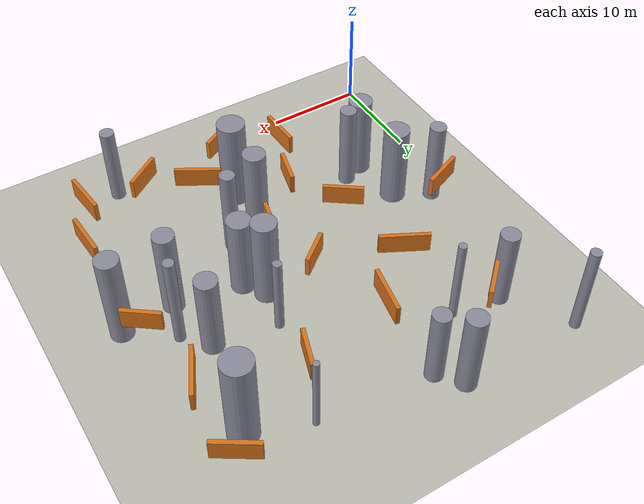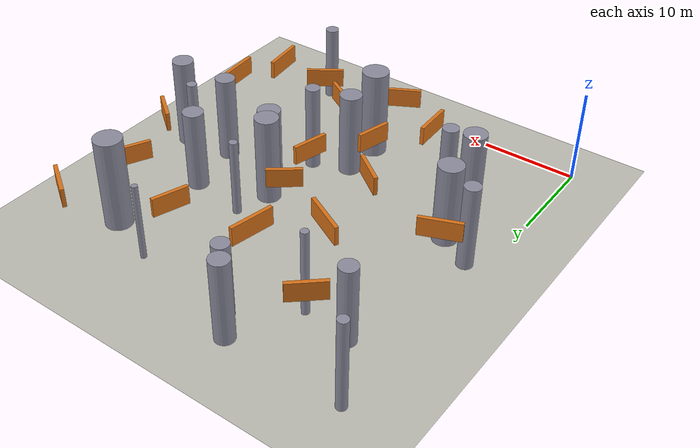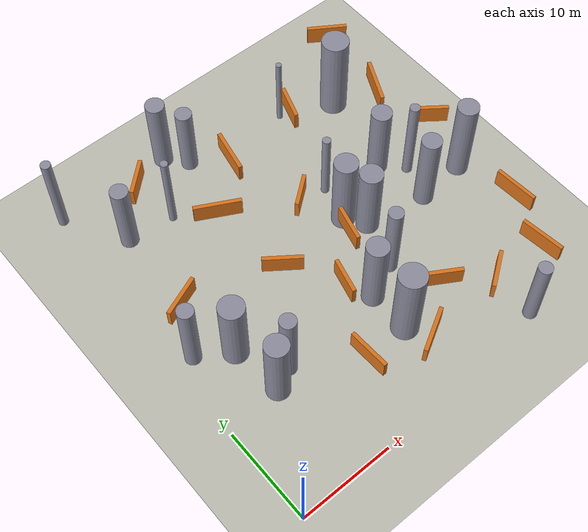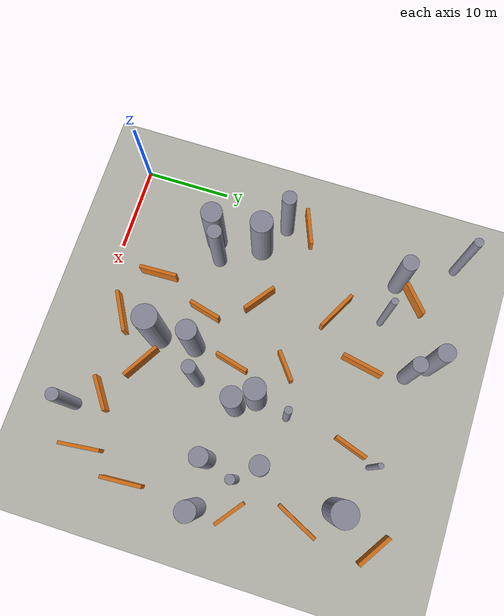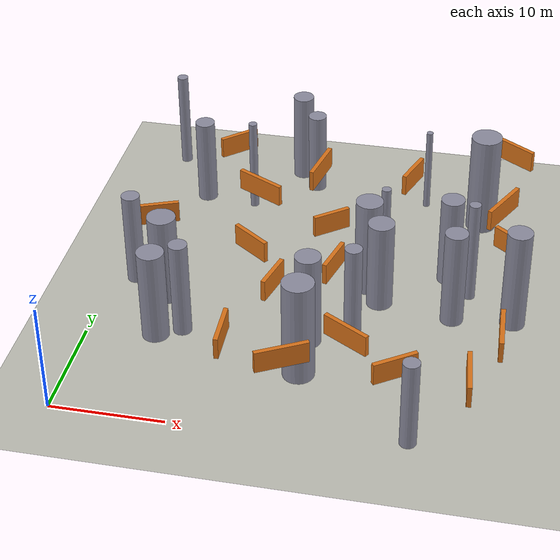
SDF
<?xml version="1.0"?>
<sdf version="1.9">
  <world name="benchmark">
    <physics type="ode">
      <max_step_size>0.004</max_step_size>
      <real_time_factor>1.0</real_time_factor>
      <real_time_update_rate>250</real_time_update_rate>
    </physics>
    <gravity>0 0 -9.8</gravity>
    <magnetic_field>6e-06 2.3e-05 -4.2e-05</magnetic_field>
    <atmosphere type="adiabatic" />
    <scene>
      <grid>false</grid>
      <ambient>0.58 0.58 0.56 1</ambient>
      <background>0.78 0.80 0.82 1</background>
      <shadows>true</shadows>
    </scene>
    <spherical_coordinates>
      <surface_model>EARTH_WGS84</surface_model>
      <world_frame_orientation>ENU</world_frame_orientation>
      <latitude_deg>30.334034</latitude_deg>
      <longitude_deg>120.036295</longitude_deg>
      <elevation>0</elevation>
    </spherical_coordinates>
    <model name="ground_plane">
      <static>true</static>
      <link name="link">
        <collision name="collision">
          <geometry><plane><normal>0 0 1</normal><size>60.0 60.0</size></plane></geometry>
          <surface><friction><ode><mu>100</mu><mu2>50</mu2></ode></friction><contact><ode /></contact><bounce /></surface>
        </collision>
        <visual name="visual">
          <geometry><plane><normal>0 0 1</normal><size>60.0 60.0</size></plane></geometry>
          <material><ambient>0.74 0.74 0.70 1</ambient><diffuse>0.74 0.74 0.70 1</diffuse><specular>0.05 0.05 0.05 1</specular></material>
        </visual>
      </link>
    </model>
    <light name="sunUTC" type="directional">
      <pose>0 0 500 0 0 0</pose>
      <cast_shadows>true</cast_shadows>
      <intensity>1.15</intensity>
      <direction>-0.25 0.45 -0.86</direction>
      <diffuse>0.98 0.94 0.86 1</diffuse>
      <specular>0.28 0.28 0.25 1</specular>
    </light>
    <model name="obstacle_0">
      <static>true</static>
      <pose>6.075 10.817 4.421 0 0 0.000</pose>
      <link name="link">
        <collision name="collision"><geometry><cylinder><radius>1.210</radius><length>8.841</length></cylinder></geometry></collision>
        <visual name="visual"><geometry><cylinder><radius>1.210</radius><length>8.841</length></cylinder></geometry>
          <material><ambient>0.55 0.55 0.62 1</ambient><diffuse>0.55 0.55 0.62 1</diffuse></material>
        </visual>
      </link>
    </model>
    <model name="obstacle_1">
      <static>true</static>
      <pose>19.401 8.061 4.830 0 0 0.000</pose>
      <link name="link">
        <collision name="collision"><geometry><cylinder><radius>1.402</radius><length>9.660</length></cylinder></geometry></collision>
        <visual name="visual"><geometry><cylinder><radius>1.402</radius><length>9.660</length></cylinder></geometry>
          <material><ambient>0.55 0.55 0.62 1</ambient><diffuse>0.55 0.55 0.62 1</diffuse></material>
        </visual>
      </link>
    </model>
    <model name="obstacle_2">
      <static>true</static>
      <pose>13.183 6.612 0 0 0 1.607</pose>
      <link name="link">
        <collision name="slab"><pose>0 0 4.564 0 0 0</pose><geometry><box><size>4.257 0.400 2.000</size></box></geometry></collision>
        <visual name="slab_vis"><pose>0 0 4.564 0 0 0</pose><geometry><box><size>4.257 0.400 2.000</size></box></geometry><material><ambient>0.85 0.45 0.10 1</ambient><diffuse>0.85 0.45 0.10 1</diffuse></material></visual>
      </link>
    </model>
    <model name="obstacle_3">
      <static>true</static>
      <pose>12.993 18.434 0 0 0 2.506</pose>
      <link name="link">
        <collision name="slab"><pose>0 0 5.460 0 0 0</pose><geometry><box><size>3.965 0.400 2.000</size></box></geometry></collision>
        <visual name="slab_vis"><pose>0 0 5.460 0 0 0</pose><geometry><box><size>3.965 0.400 2.000</size></box></geometry><material><ambient>0.85 0.45 0.10 1</ambient><diffuse>0.85 0.45 0.10 1</diffuse></material></visual>
      </link>
    </model>
    <model name="obstacle_4">
      <static>true</static>
      <pose>2.025 18.437 4.521 0 0 0.000</pose>
      <link name="link">
        <collision name="collision"><geometry><cylinder><radius>0.831</radius><length>9.043</length></cylinder></geometry></collision>
        <visual name="visual"><geometry><cylinder><radius>0.831</radius><length>9.043</length></cylinder></geometry>
          <material><ambient>0.55 0.55 0.62 1</ambient><diffuse>0.55 0.55 0.62 1</diffuse></material>
        </visual>
      </link>
    </model>
    <model name="obstacle_5">
      <static>true</static>
      <pose>16.095 13.191 0 0 0 1.321</pose>
      <link name="link">
        <collision name="slab"><pose>0 0 5.680 0 0 0</pose><geometry><box><size>3.640 0.400 2.000</size></box></geometry></collision>
        <visual name="slab_vis"><pose>0 0 5.680 0 0 0</pose><geometry><box><size>3.640 0.400 2.000</size></box></geometry><material><ambient>0.85 0.45 0.10 1</ambient><diffuse>0.85 0.45 0.10 1</diffuse></material></visual>
      </link>
    </model>
    <model name="obstacle_6">
      <static>true</static>
      <pose>5.441 16.321 4.333 0 0 0.000</pose>
      <link name="link">
        <collision name="collision"><geometry><cylinder><radius>1.294</radius><length>8.666</length></cylinder></geometry></collision>
        <visual name="visual"><geometry><cylinder><radius>1.294</radius><length>8.666</length></cylinder></geometry>
          <material><ambient>0.55 0.55 0.62 1</ambient><diffuse>0.55 0.55 0.62 1</diffuse></material>
        </visual>
      </link>
    </model>
    <model name="obstacle_7">
      <static>true</static>
      <pose>18.815 4.285 0 0 0 -2.636</pose>
      <link name="link">
        <collision name="slab"><pose>0 0 4.896 0 0 0</pose><geometry><box><size>4.705 0.400 2.000</size></box></geometry></collision>
        <visual name="slab_vis"><pose>0 0 4.896 0 0 0</pose><geometry><box><size>4.705 0.400 2.000</size></box></geometry><material><ambient>0.85 0.45 0.10 1</ambient><diffuse>0.85 0.45 0.10 1</diffuse></material></visual>
      </link>
    </model>
    <model name="obstacle_8">
      <static>true</static>
      <pose>19.318 12.519 4.547 0 0 0.000</pose>
      <link name="link">
        <collision name="collision"><geometry><cylinder><radius>1.148</radius><length>9.095</length></cylinder></geometry></collision>
        <visual name="visual"><geometry><cylinder><radius>1.148</radius><length>9.095</length></cylinder></geometry>
          <material><ambient>0.55 0.55 0.62 1</ambient><diffuse>0.55 0.55 0.62 1</diffuse></material>
        </visual>
      </link>
    </model>
    <model name="obstacle_9">
      <static>true</static>
      <pose>8.211 11.867 4.596 0 0 0.000</pose>
      <link name="link">
        <collision name="collision"><geometry><cylinder><radius>0.834</radius><length>9.193</length></cylinder></geometry></collision>
        <visual name="visual"><geometry><cylinder><radius>0.834</radius><length>9.193</length></cylinder></geometry>
          <material><ambient>0.55 0.55 0.62 1</ambient><diffuse>0.55 0.55 0.62 1</diffuse></material>
        </visual>
      </link>
    </model>
    <model name="obstacle_10">
      <static>true</static>
      <pose>1.163 39.115 4.821 0 0 0.000</pose>
      <link name="link">
        <collision name="collision"><geometry><cylinder><radius>0.521</radius><length>9.643</length></cylinder></geometry></collision>
        <visual name="visual"><geometry><cylinder><radius>0.521</radius><length>9.643</length></cylinder></geometry>
          <material><ambient>0.55 0.55 0.62 1</ambient><diffuse>0.55 0.55 0.62 1</diffuse></material>
        </visual>
      </link>
    </model>
    <model name="obstacle_11">
      <static>true</static>
      <pose>15.363 36.771 4.090 0 0 0.000</pose>
      <link name="link">
        <collision name="collision"><geometry><cylinder><radius>0.872</radius><length>8.180</length></cylinder></geometry></collision>
        <visual name="visual"><geometry><cylinder><radius>0.872</radius><length>8.180</length></cylinder></geometry>
          <material><ambient>0.55 0.55 0.62 1</ambient><diffuse>0.55 0.55 0.62 1</diffuse></material>
        </visual>
      </link>
    </model>
    <model name="obstacle_12">
      <static>true</static>
      <pose>11.910 26.891 0 0 0 2.658</pose>
      <link name="link">
        <collision name="slab"><pose>0 0 5.796 0 0 0</pose><geometry><box><size>4.764 0.400 2.000</size></box></geometry></collision>
        <visual name="slab_vis"><pose>0 0 5.796 0 0 0</pose><geometry><box><size>4.764 0.400 2.000</size></box></geometry><material><ambient>0.85 0.45 0.10 1</ambient><diffuse>0.85 0.45 0.10 1</diffuse></material></visual>
      </link>
    </model>
    <model name="obstacle_13">
      <static>true</static>
      <pose>5.031 32.960 4.236 0 0 0.000</pose>
      <link name="link">
        <collision name="collision"><geometry><cylinder><radius>0.926</radius><length>8.471</length></cylinder></geometry></collision>
        <visual name="visual"><geometry><cylinder><radius>0.926</radius><length>8.471</length></cylinder></geometry>
          <material><ambient>0.55 0.55 0.62 1</ambient><diffuse>0.55 0.55 0.62 1</diffuse></material>
        </visual>
      </link>
    </model>
    <model name="obstacle_14">
      <static>true</static>
      <pose>13.543 38.933 4.451 0 0 0.000</pose>
      <link name="link">
        <collision name="collision"><geometry><cylinder><radius>0.996</radius><length>8.901</length></cylinder></geometry></collision>
        <visual name="visual"><geometry><cylinder><radius>0.996</radius><length>8.901</length></cylinder></geometry>
          <material><ambient>0.55 0.55 0.62 1</ambient><diffuse>0.55 0.55 0.62 1</diffuse></material>
        </visual>
      </link>
    </model>
    <model name="obstacle_15">
      <static>true</static>
      <pose>9.934 32.352 4.613 0 0 0.000</pose>
      <link name="link">
        <collision name="collision"><geometry><cylinder><radius>0.399</radius><length>9.226</length></cylinder></geometry></collision>
        <visual name="visual"><geometry><cylinder><radius>0.399</radius><length>9.226</length></cylinder></geometry>
          <material><ambient>0.55 0.55 0.62 1</ambient><diffuse>0.55 0.55 0.62 1</diffuse></material>
        </visual>
      </link>
    </model>
    <model name="obstacle_16">
      <static>true</static>
      <pose>7.947 34.733 0 0 0 -2.406</pose>
      <link name="link">
        <collision name="slab"><pose>0 0 5.463 0 0 0</pose><geometry><box><size>3.865 0.400 2.000</size></box></geometry></collision>
        <visual name="slab_vis"><pose>0 0 5.463 0 0 0</pose><geometry><box><size>3.865 0.400 2.000</size></box></geometry><material><ambient>0.85 0.45 0.10 1</ambient><diffuse>0.85 0.45 0.10 1</diffuse></material></visual>
      </link>
    </model>
    <model name="obstacle_17">
      <static>true</static>
      <pose>16.771 31.196 0 0 0 -1.767</pose>
      <link name="link">
        <collision name="slab"><pose>0 0 5.711 0 0 0</pose><geometry><box><size>4.675 0.400 2.000</size></box></geometry></collision>
        <visual name="slab_vis"><pose>0 0 5.711 0 0 0</pose><geometry><box><size>4.675 0.400 2.000</size></box></geometry><material><ambient>0.85 0.45 0.10 1</ambient><diffuse>0.85 0.45 0.10 1</diffuse></material></visual>
      </link>
    </model>
    <model name="obstacle_18">
      <static>true</static>
      <pose>19.290 23.370 0 0 0 0.668</pose>
      <link name="link">
        <collision name="slab"><pose>0 0 5.270 0 0 0</pose><geometry><box><size>3.540 0.400 2.000</size></box></geometry></collision>
        <visual name="slab_vis"><pose>0 0 5.270 0 0 0</pose><geometry><box><size>3.540 0.400 2.000</size></box></geometry><material><ambient>0.85 0.45 0.10 1</ambient><diffuse>0.85 0.45 0.10 1</diffuse></material></visual>
      </link>
    </model>
    <model name="obstacle_19">
      <static>true</static>
      <pose>3.371 21.287 0 0 0 -2.758</pose>
      <link name="link">
        <collision name="slab"><pose>0 0 5.454 0 0 0</pose><geometry><box><size>4.219 0.400 2.000</size></box></geometry></collision>
        <visual name="slab_vis"><pose>0 0 5.454 0 0 0</pose><geometry><box><size>4.219 0.400 2.000</size></box></geometry><material><ambient>0.85 0.45 0.10 1</ambient><diffuse>0.85 0.45 0.10 1</diffuse></material></visual>
      </link>
    </model>
    <model name="obstacle_20">
      <static>true</static>
      <pose>29.710 1.480 4.180 0 0 0.000</pose>
      <link name="link">
        <collision name="collision"><geometry><cylinder><radius>0.720</radius><length>8.361</length></cylinder></geometry></collision>
        <visual name="visual"><geometry><cylinder><radius>0.720</radius><length>8.361</length></cylinder></geometry>
          <material><ambient>0.55 0.55 0.62 1</ambient><diffuse>0.55 0.55 0.62 1</diffuse></material>
        </visual>
      </link>
    </model>
    <model name="obstacle_21">
      <static>true</static>
      <pose>36.023 10.614 0 0 0 -1.507</pose>
      <link name="link">
        <collision name="slab"><pose>0 0 4.783 0 0 0</pose><geometry><box><size>4.549 0.400 2.000</size></box></geometry></collision>
        <visual name="slab_vis"><pose>0 0 4.783 0 0 0</pose><geometry><box><size>4.549 0.400 2.000</size></box></geometry><material><ambient>0.85 0.45 0.10 1</ambient><diffuse>0.85 0.45 0.10 1</diffuse></material></visual>
      </link>
    </model>
    <model name="obstacle_22">
      <static>true</static>
      <pose>33.973 5.085 0 0 0 1.680</pose>
      <link name="link">
        <collision name="slab"><pose>0 0 4.407 0 0 0</pose><geometry><box><size>4.547 0.400 2.000</size></box></geometry></collision>
        <visual name="slab_vis"><pose>0 0 4.407 0 0 0</pose><geometry><box><size>4.547 0.400 2.000</size></box></geometry><material><ambient>0.85 0.45 0.10 1</ambient><diffuse>0.85 0.45 0.10 1</diffuse></material></visual>
      </link>
    </model>
    <model name="obstacle_23">
      <static>true</static>
      <pose>27.954 5.161 0 0 0 0.608</pose>
      <link name="link">
        <collision name="slab"><pose>0 0 4.501 0 0 0</pose><geometry><box><size>4.013 0.400 2.000</size></box></geometry></collision>
        <visual name="slab_vis"><pose>0 0 4.501 0 0 0</pose><geometry><box><size>4.013 0.400 2.000</size></box></geometry><material><ambient>0.85 0.45 0.10 1</ambient><diffuse>0.85 0.45 0.10 1</diffuse></material></visual>
      </link>
    </model>
    <model name="obstacle_24">
      <static>true</static>
      <pose>36.518 18.442 4.900 0 0 0.000</pose>
      <link name="link">
        <collision name="collision"><geometry><cylinder><radius>1.118</radius><length>9.800</length></cylinder></geometry></collision>
        <visual name="visual"><geometry><cylinder><radius>1.118</radius><length>9.800</length></cylinder></geometry>
          <material><ambient>0.55 0.55 0.62 1</ambient><diffuse>0.55 0.55 0.62 1</diffuse></material>
        </visual>
      </link>
    </model>
    <model name="obstacle_25">
      <static>true</static>
      <pose>22.951 14.053 4.658 0 0 0.000</pose>
      <link name="link">
        <collision name="collision"><geometry><cylinder><radius>0.766</radius><length>9.315</length></cylinder></geometry></collision>
        <visual name="visual"><geometry><cylinder><radius>0.766</radius><length>9.315</length></cylinder></geometry>
          <material><ambient>0.55 0.55 0.62 1</ambient><diffuse>0.55 0.55 0.62 1</diffuse></material>
        </visual>
      </link>
    </model>
    <model name="obstacle_26">
      <static>true</static>
      <pose>24.517 19.118 4.336 0 0 0.000</pose>
      <link name="link">
        <collision name="collision"><geometry><cylinder><radius>1.190</radius><length>8.672</length></cylinder></geometry></collision>
        <visual name="visual"><geometry><cylinder><radius>1.190</radius><length>8.672</length></cylinder></geometry>
          <material><ambient>0.55 0.55 0.62 1</ambient><diffuse>0.55 0.55 0.62 1</diffuse></material>
        </visual>
      </link>
    </model>
    <model name="obstacle_27">
      <static>true</static>
      <pose>31.196 17.950 4.673 0 0 0.000</pose>
      <link name="link">
        <collision name="collision"><geometry><cylinder><radius>1.032</radius><length>9.347</length></cylinder></geometry></collision>
        <visual name="visual"><geometry><cylinder><radius>1.032</radius><length>9.347</length></cylinder></geometry>
          <material><ambient>0.55 0.55 0.62 1</ambient><diffuse>0.55 0.55 0.62 1</diffuse></material>
        </visual>
      </link>
    </model>
    <model name="obstacle_28">
      <static>true</static>
      <pose>23.405 8.216 0 0 0 -0.538</pose>
      <link name="link">
        <collision name="slab"><pose>0 0 4.776 0 0 0</pose><geometry><box><size>4.573 0.400 2.000</size></box></geometry></collision>
        <visual name="slab_vis"><pose>0 0 4.776 0 0 0</pose><geometry><box><size>4.573 0.400 2.000</size></box></geometry><material><ambient>0.85 0.45 0.10 1</ambient><diffuse>0.85 0.45 0.10 1</diffuse></material></visual>
      </link>
    </model>
    <model name="obstacle_29">
      <static>true</static>
      <pose>20.570 17.681 0 0 0 1.322</pose>
      <link name="link">
        <collision name="slab"><pose>0 0 4.896 0 0 0</pose><geometry><box><size>3.835 0.400 2.000</size></box></geometry></collision>
        <visual name="slab_vis"><pose>0 0 4.896 0 0 0</pose><geometry><box><size>3.835 0.400 2.000</size></box></geometry><material><ambient>0.85 0.45 0.10 1</ambient><diffuse>0.85 0.45 0.10 1</diffuse></material></visual>
      </link>
    </model>
    <model name="obstacle_30">
      <static>true</static>
      <pose>23.110 21.199 4.709 0 0 0.000</pose>
      <link name="link">
        <collision name="collision"><geometry><cylinder><radius>1.227</radius><length>9.418</length></cylinder></geometry></collision>
        <visual name="visual"><geometry><cylinder><radius>1.227</radius><length>9.418</length></cylinder></geometry>
          <material><ambient>0.55 0.55 0.62 1</ambient><diffuse>0.55 0.55 0.62 1</diffuse></material>
        </visual>
      </link>
    </model>
    <model name="obstacle_31">
      <static>true</static>
      <pose>34.731 37.443 0 0 0 2.564</pose>
      <link name="link">
        <collision name="slab"><pose>0 0 5.770 0 0 0</pose><geometry><box><size>4.170 0.400 2.000</size></box></geometry></collision>
        <visual name="slab_vis"><pose>0 0 5.770 0 0 0</pose><geometry><box><size>4.170 0.400 2.000</size></box></geometry><material><ambient>0.85 0.45 0.10 1</ambient><diffuse>0.85 0.45 0.10 1</diffuse></material></visual>
      </link>
    </model>
    <model name="obstacle_32">
      <static>true</static>
      <pose>32.329 21.625 4.999 0 0 0.000</pose>
      <link name="link">
        <collision name="collision"><geometry><cylinder><radius>0.526</radius><length>9.999</length></cylinder></geometry></collision>
        <visual name="visual"><geometry><cylinder><radius>0.526</radius><length>9.999</length></cylinder></geometry>
          <material><ambient>0.55 0.55 0.62 1</ambient><diffuse>0.55 0.55 0.62 1</diffuse></material>
        </visual>
      </link>
    </model>
    <model name="obstacle_33">
      <static>true</static>
      <pose>34.399 29.247 0 0 0 1.122</pose>
      <link name="link">
        <collision name="slab"><pose>0 0 4.804 0 0 0</pose><geometry><box><size>4.980 0.400 2.000</size></box></geometry></collision>
        <visual name="slab_vis"><pose>0 0 4.804 0 0 0</pose><geometry><box><size>4.980 0.400 2.000</size></box></geometry><material><ambient>0.85 0.45 0.10 1</ambient><diffuse>0.85 0.45 0.10 1</diffuse></material></visual>
      </link>
    </model>
    <model name="obstacle_34">
      <static>true</static>
      <pose>25.473 32.460 0 0 0 -1.894</pose>
      <link name="link">
        <collision name="slab"><pose>0 0 5.217 0 0 0</pose><geometry><box><size>3.786 0.400 2.000</size></box></geometry></collision>
        <visual name="slab_vis"><pose>0 0 5.217 0 0 0</pose><geometry><box><size>3.786 0.400 2.000</size></box></geometry><material><ambient>0.85 0.45 0.10 1</ambient><diffuse>0.85 0.45 0.10 1</diffuse></material></visual>
      </link>
    </model>
    <model name="obstacle_35">
      <static>true</static>
      <pose>35.646 22.423 0 0 0 -0.649</pose>
      <link name="link">
        <collision name="slab"><pose>0 0 5.708 0 0 0</pose><geometry><box><size>3.650 0.400 2.000</size></box></geometry></collision>
        <visual name="slab_vis"><pose>0 0 5.708 0 0 0</pose><geometry><box><size>3.650 0.400 2.000</size></box></geometry><material><ambient>0.85 0.45 0.10 1</ambient><diffuse>0.85 0.45 0.10 1</diffuse></material></visual>
      </link>
    </model>
    <model name="obstacle_36">
      <static>true</static>
      <pose>24.025 25.080 4.154 0 0 0.000</pose>
      <link name="link">
        <collision name="collision"><geometry><cylinder><radius>0.438</radius><length>8.309</length></cylinder></geometry></collision>
        <visual name="visual"><geometry><cylinder><radius>0.438</radius><length>8.309</length></cylinder></geometry>
          <material><ambient>0.55 0.55 0.62 1</ambient><diffuse>0.55 0.55 0.62 1</diffuse></material>
        </visual>
      </link>
    </model>
    <model name="obstacle_37">
      <static>true</static>
      <pose>32.166 33.224 4.938 0 0 0.000</pose>
      <link name="link">
        <collision name="collision"><geometry><cylinder><radius>1.436</radius><length>9.877</length></cylinder></geometry></collision>
        <visual name="visual"><geometry><cylinder><radius>1.436</radius><length>9.877</length></cylinder></geometry>
          <material><ambient>0.55 0.55 0.62 1</ambient><diffuse>0.55 0.55 0.62 1</diffuse></material>
        </visual>
      </link>
    </model>
    <model name="obstacle_38">
      <static>true</static>
      <pose>30.184 23.935 4.372 0 0 0.000</pose>
      <link name="link">
        <collision name="collision"><geometry><cylinder><radius>1.068</radius><length>8.745</length></cylinder></geometry></collision>
        <visual name="visual"><geometry><cylinder><radius>1.068</radius><length>8.745</length></cylinder></geometry>
          <material><ambient>0.55 0.55 0.62 1</ambient><diffuse>0.55 0.55 0.62 1</diffuse></material>
        </visual>
      </link>
    </model>
    <model name="obstacle_39">
      <static>true</static>
      <pose>26.565 35.547 4.151 0 0 0.000</pose>
      <link name="link">
        <collision name="collision"><geometry><cylinder><radius>0.311</radius><length>8.302</length></cylinder></geometry></collision>
        <visual name="visual"><geometry><cylinder><radius>0.311</radius><length>8.302</length></cylinder></geometry>
          <material><ambient>0.55 0.55 0.62 1</ambient><diffuse>0.55 0.55 0.62 1</diffuse></material>
        </visual>
      </link>
    </model>
  </world>
</sdf>
